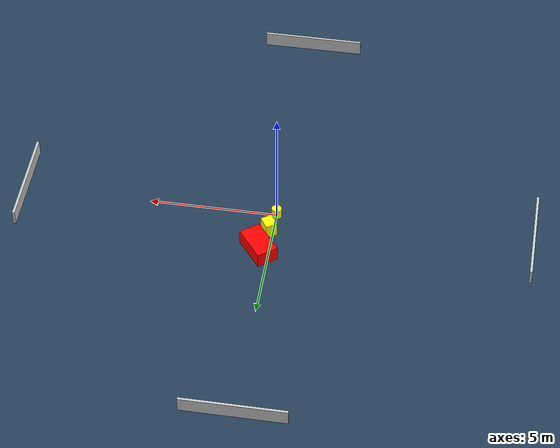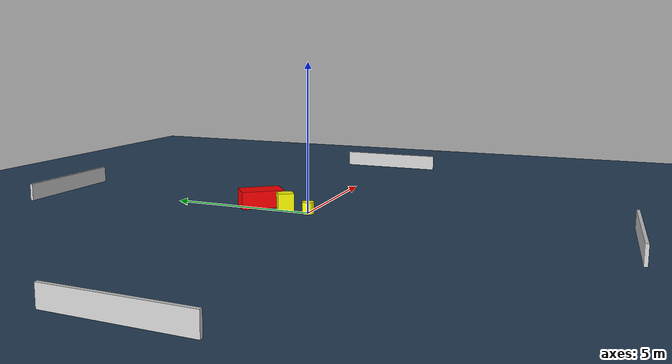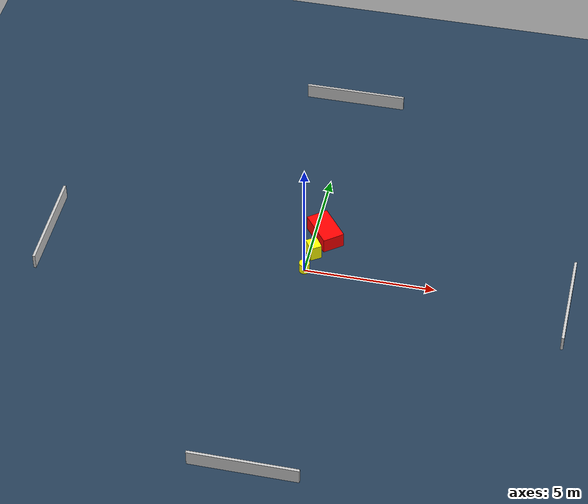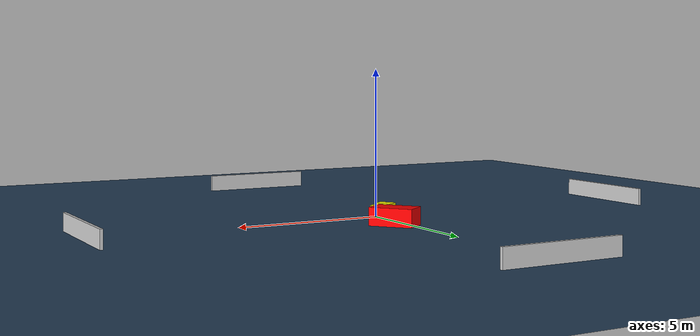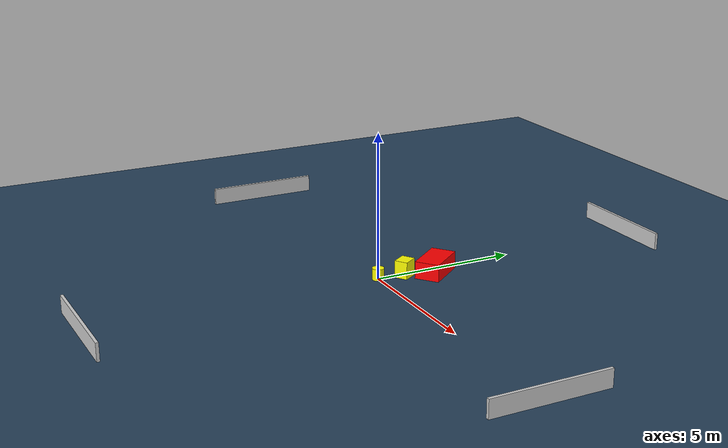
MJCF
<?xml version="1.0" ?>
<mujoco model="generated_environment">
  <option timestep="0.01" integrator="RK4" cone="elliptic"/>
  <default>
    <geom density="1"/>
  </default>
  <asset>
    <texture builtin="gradient" height="3072" name="skybox" rgb1="0.3 0.5 0.7" rgb2="0 0 0" type="skybox" width="512"/>
    <texture builtin="checker" height="300" name="groundplane" rgb1="0.2 0.3 0.4" rgb2="0.1 0.2 0.3" type="2d" width="300"/>
    <material name="groundplane" reflectance="0.2" texrepeat="5 5" texture="groundplane"/>
  </asset>
  <worldbody>
    <light dir="0 0 -1" directional="true" pos="0 0 1.5"/>
    <geom condim="3" friction="0.5 0.005 0.001" material="groundplane" name="floor" pos="0 0 0" size="0 0 0.05" type="plane"/>
    <body name="walls">
      <geom name="wall_1" condim="4" pos="-10.0 0.0 0.3" rgba="0.800000011920929 0.800000011920929 0.800000011920929 1.0" size="0.05 2.0 0.3" type="box"/>
      <geom name="wall_2" condim="4" pos="10.0 0.0 0.3" rgba="0.800000011920929 0.800000011920929 0.800000011920929 1.0" size="0.05 2.0 0.3" type="box"/>
      <geom name="wall_3" condim="4" pos="0.0 -10.0 0.3" rgba="0.800000011920929 0.800000011920929 0.800000011920929 1.0" size="2.0 0.05 0.3" type="box"/>
      <geom name="wall_4" condim="4" pos="0.0 10.0 0.3" rgba="0.800000011920929 0.800000011920929 0.800000011920929 1.0" size="2.0 0.05 0.3" type="box"/>
    </body>
    <body name="robot">
      <joint name="joint_x" type="slide" pos="0 0 0" axis="1 0 0"/>
      <joint name="joint_y" type="slide" pos="0 0 0" axis="0 1 0"/>
      <geom name="robot" type="cylinder" pos="0.0 0.0 0.2" size="0.2 0.2 0.0" mass="5.0" friction="1.0 0.005 0.0001" condim="4" rgba="1.0 1.0 0.0 1.0"/>
    </body>
    <body name="obstacle_1_movable">
      <geom name="obstacle_1_movable" condim="4" pos="0.16413260897507048 0.9092397221264185 0.3" euler="0 0 123.34671060489303" friction="0.0 0.005 0.001" rgba="1.0 1.0 0.0 1.0" size="0.2720585942419659 0.22828366405791664 0.3" type="box" mass="0.1"/>
      <joint type="free"/>
    </body>
    <body name="obstacle_2_static">
      <geom name="obstacle_2_static" condim="4" pos="0.4000780586306654 1.9491839840367362 0.3" euler="0 0 37.81518951914867" friction="0.0 0.005 0.001" rgba="1.0 0.0 0.0 1.0" size="0.42481392237211996 0.7338760852313129 0.3" type="box"/>
    </body>
  </worldbody>
  <actuator>
    <motor name="actuator_x" joint="joint_x" gear="1" ctrlrange="-1 1"/>
    <motor name="actuator_y" joint="joint_y" gear="1" ctrlrange="-1 1"/>
  </actuator>
</mujoco>
